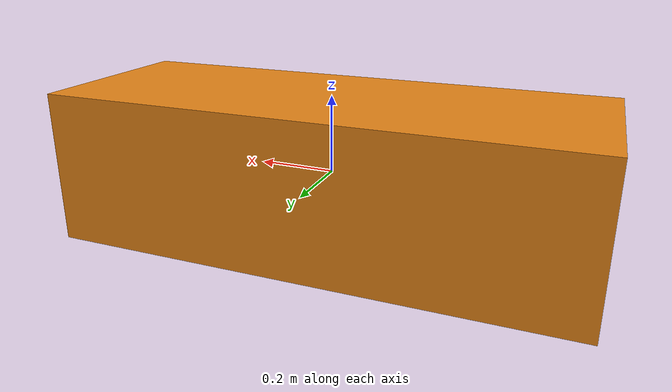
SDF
<?xml version="1.0" ?>
<sdf version="1.7">
    <model name="orange_brick">
			<static>true</static>
      <link name="base_link">

				<collision name="collision">
					<geometry>
						<box>
							<size>1.357 0.2 0.2</size>
						</box>
					</geometry>

					<surface>

						<bounce>
							<restitution_coefficient>1.0</restitution_coefficient>
							<threshold>0</threshold>
						</bounce>

						<friction>
							<ode>
								<mu>0.0</mu>
								<mu2>0.0</mu2>
							</ode>
						</friction>

						<contact>
							<ode>
								<max_vel>999</max_vel>
							</ode>
						</contact>

					</surface>

				</collision>

				<visual name="visual">
					<geometry>
						<box>
							<size>1.357 0.5 0.4</size>
						</box>
					</geometry>
					<material>
						<script>
							<uri>file://media/materials/scripts/gazebo.material</uri>
							<name>Gazebo/Orange</name>
						</script>
					</material>
				</visual>
      </link>

    </model>
</sdf>
